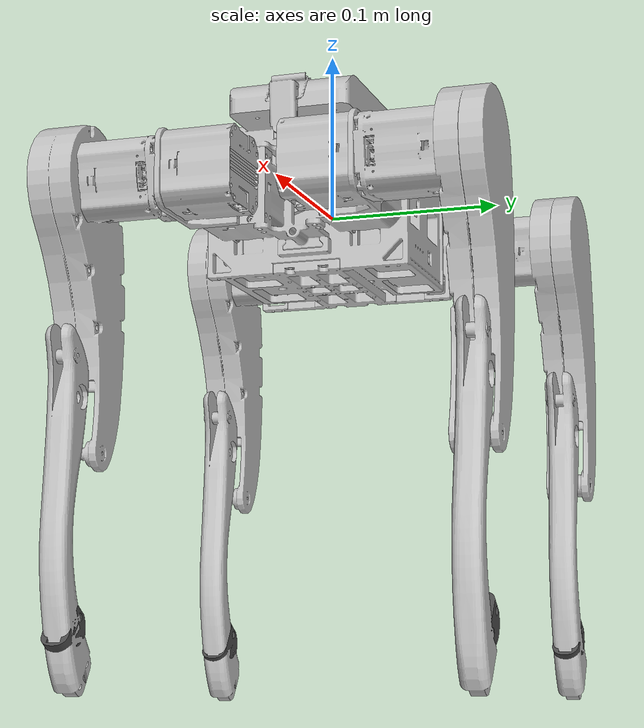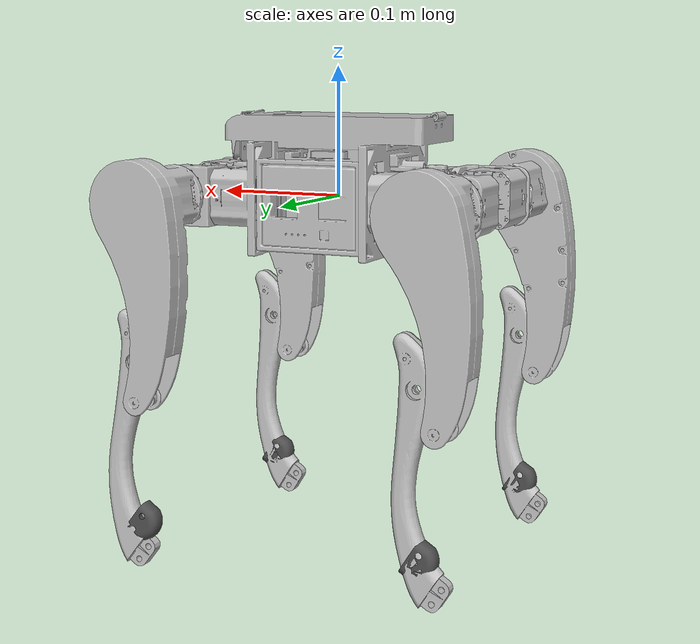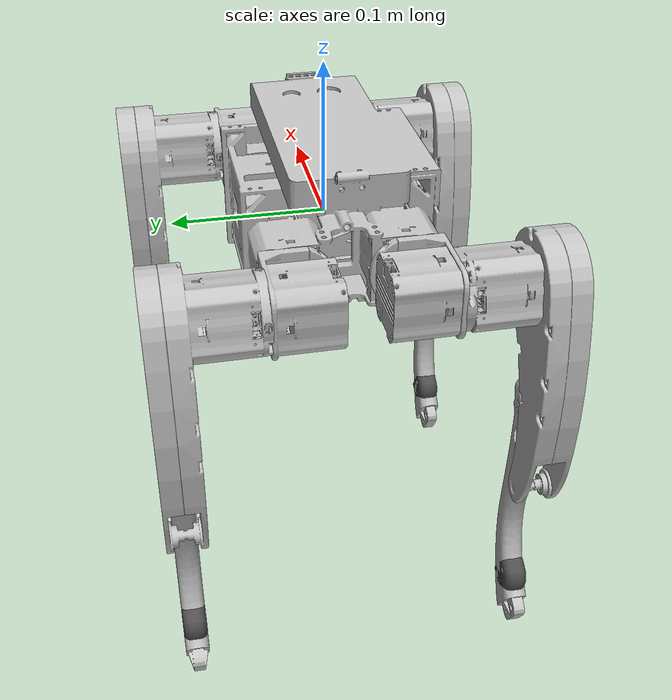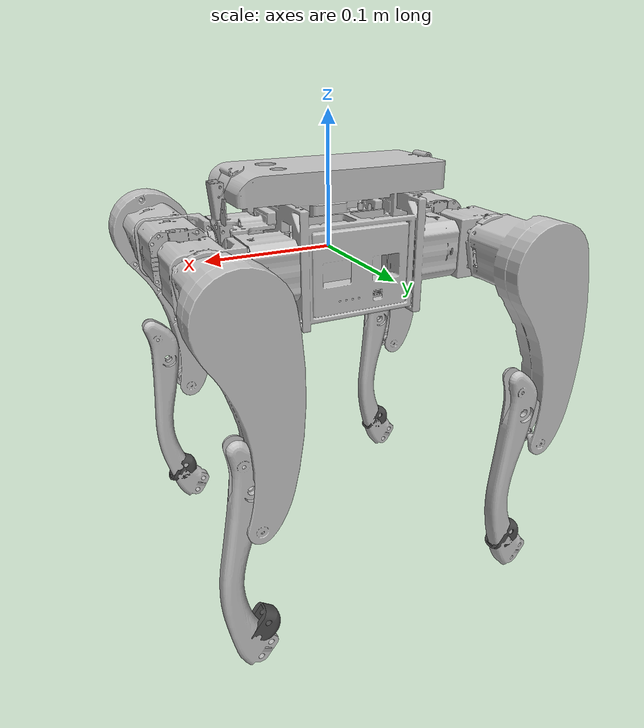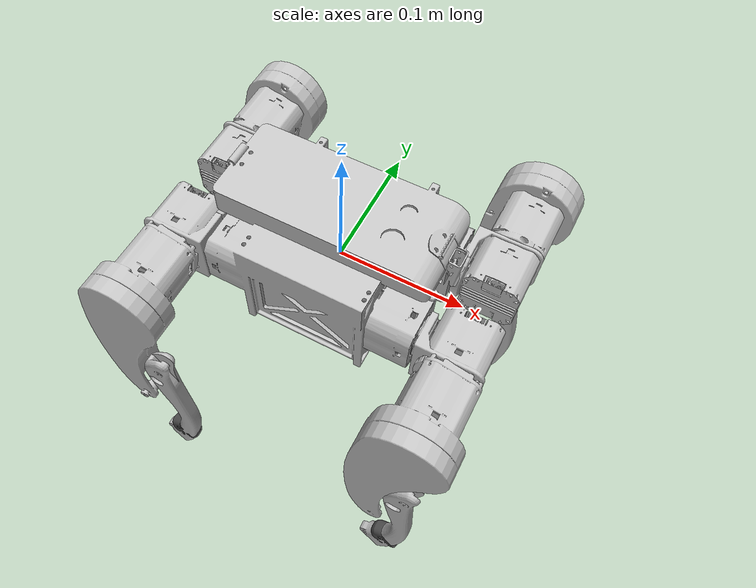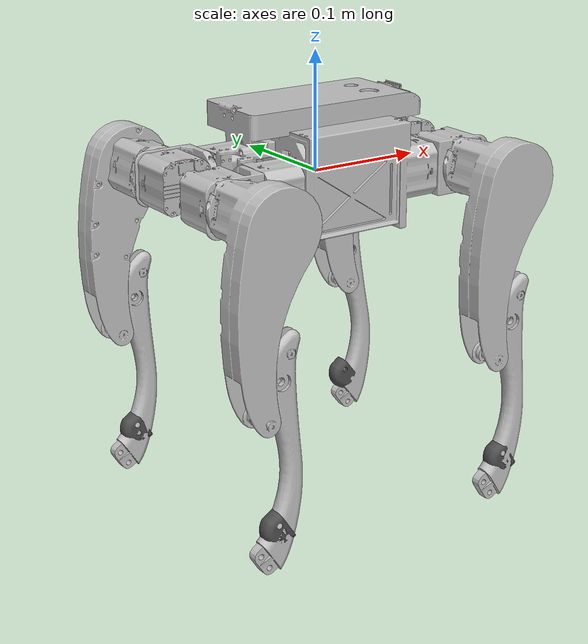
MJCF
<mujoco model="htdw_4438">
  <compiler angle="radian" meshdir="meshes/" />
  <asset>
    <mesh name="base_link" file="base_link.STL" />
    <mesh name="FL_hip" file="FL_hip.STL" />
    <mesh name="FL_thigh" file="FL_thigh.STL" />
    <mesh name="FL_calf" file="FL_calf.STL" />
    <mesh name="FL_foot" file="FL_foot.STL" />
    <mesh name="FR_hip" file="FR_hip.STL" />
    <mesh name="FR_thigh" file="FR_thigh.STL" />
    <mesh name="FR_calf" file="FR_calf.STL" />
    <mesh name="FR_foot" file="FR_foot.STL" />
    <mesh name="RL_hip" file="RL_hip.STL" />
    <mesh name="RL_thigh" file="RL_thigh.STL" />
    <mesh name="RL_calf" file="RL_calf.STL" />
    <mesh name="RL_foot" file="RL_foot.STL" />
    <mesh name="RR_hip" file="RR_hip.STL" />
    <mesh name="RR_thigh" file="RR_thigh.STL" />
    <mesh name="RR_calf" file="RR_calf.STL" />
    <mesh name="RR_foot" file="RR_foot.STL" />
    <material name="base_link_mat" rgba="0.7529 0.7529 0.7529 1" specular="0" />
    <material name="FL_hip_mat" rgba="0.7529 0.7529 0.7529 1" specular="0" />
    <material name="FL_thigh_mat" rgba="0.7529 0.7529 0.7529 1" specular="0" />
    <material name="FL_calf_mat" rgba="0.7529 0.7529 0.7529 1" specular="0" />
    <material name="FL_foot_mat" rgba="0.298 0.298 0.298 1" specular="0" />
    <material name="FR_hip_mat" rgba="0.7529 0.7529 0.7529 1" specular="0" />
    <material name="FR_thigh_mat" rgba="0.7529 0.7529 0.7529 1" specular="0" />
    <material name="FR_calf_mat" rgba="0.7529 0.7529 0.7529 1" specular="0" />
    <material name="FR_foot_mat" rgba="0.298 0.298 0.298 1" specular="0" />
    <material name="RL_hip_mat" rgba="0.7529 0.7529 0.7529 1" specular="0" />
    <material name="RL_thigh_mat" rgba="0.7529 0.7529 0.7529 1" specular="0" />
    <material name="RL_calf_mat" rgba="0.7529 0.7529 0.7529 1" specular="0" />
    <material name="RL_foot_mat" rgba="0.298 0.298 0.298 1" specular="0" />
    <material name="RR_hip_mat" rgba="0.7529 0.7529 0.7529 1" specular="0" />
    <material name="RR_thigh_mat" rgba="0.7529 0.7529 0.7529 1" specular="0" />
    <material name="RR_calf_mat" rgba="0.7529 0.7529 0.7529 1" specular="0" />
    <material name="RR_foot_mat" rgba="0.298 0.298 0.298 1" specular="0" />
  </asset>

  <worldbody>
    <body name="base_link" pos="0 0 0">
      <inertial pos="0.0006005 -0.0031498 0.0015251" mass="1.8429733" fullinertia="0.0011628461 0.0009778733 0.0013211256 0.0000021772 -0.0000020449 0.000007976"/>
      <geom pos="0 0 0" group="1" contype="0" conaffinity="0" material="base_link_mat" type="mesh" mesh="base_link" />
      <geom pos="0 0 0" rgba="0.9373 0.2667 0.2667 1" group="3" contype="1" conaffinity="1" type="mesh" mesh="base_link" />
      <body name="FL_hip" pos="0.11415 0.035 0">
        <joint name="FL_hip_joint" type="hinge" axis="1 0 0" limited="true" range="-1.05 1.05" damping="0" frictionloss="0"/>
        <inertial pos="-0.0010818 -0.0018793 -0.0001032" mass="0.2516947" fullinertia="0.0000539553 0.0000898226 0.0000558057 0.000000608 -0.0000014675 -0.0000004216"/>
        <geom pos="0 0 0" group="1" contype="0" conaffinity="0" material="FL_hip_mat" type="mesh" mesh="FL_hip" />
        <geom pos="0 0 0" rgba="0.9373 0.2667 0.2667 1" group="3" contype="1" conaffinity="1" type="mesh" mesh="FL_hip" />
        <body name="FL_thigh" pos="0 0.0792 0">
          <joint name="FL_thigh_joint" type="hinge" axis="0 1 0" limited="true" range="-1.57 3.49" damping="0" frictionloss="0"/>
          <inertial pos="-0.0009952 -0.0261102 -0.0076446" mass="0.3249236" fullinertia="0.0001368837 0.0001842674 0.0000693741 -0.0000000251 0.0000079893 -0.0000018588"/>
          <geom pos="0 0 0" group="1" contype="0" conaffinity="0" material="FL_thigh_mat" type="mesh" mesh="FL_thigh" />
          <geom pos="0 0 0" rgba="0.9373 0.2667 0.2667 1" group="3" contype="1" conaffinity="1" type="mesh" mesh="FL_thigh" />
          <body name="FL_calf" pos="0 0 -0.12">
            <joint name="FL_calf_joint" type="hinge" axis="0 1 0" limited="true" range="-2.7 -0.84" damping="0" frictionloss="0"/>
            <inertial pos="0.0056449 -0.0012143 -0.0040209" mass="0.0420237" fullinertia="0.0000555097 0.0000575373 0.0000030128 -0.0000000177 -0.0000014848 0.0000000095"/>
            <geom pos="0 0 0" group="1" contype="0" conaffinity="0" material="FL_calf_mat" type="mesh" mesh="FL_calf" />
            <geom pos="0 0 0" rgba="0.9373 0.2667 0.2667 1" group="3" contype="1" conaffinity="1" type="mesh" mesh="FL_calf" />
            <body name="FL_foot" pos="0 0 -0.12516">
              <inertial pos="-0.001777 -0.0000001 -0.0039518" mass="0.0096685" fullinertia="0.0000008254 0.0000010749 0.0000010348 0 -0.0000001349 0"/>
              <geom pos="0 0 0" group="1" contype="0" conaffinity="0" material="FL_foot_mat" type="mesh" mesh="FL_foot" />
              <geom pos="0 0 0" rgba="0.9373 0.2667 0.2667 1" group="3" contype="1" conaffinity="1" type="sphere" size="0.01675" />
            </body>
          </body>
        </body>
      </body>
      <body name="FR_hip" pos="0.11415 -0.035 0">
        <joint name="FR_hip_joint" type="hinge" axis="1 0 0" limited="true" range="-1.05 1.05" damping="0" frictionloss="0"/>
        <inertial pos="-0.0012994 0.0018793 -0.0001032" mass="0.2516947" fullinertia="0.0000539553 0.0000898226 0.0000558057 -0.0000006434 -0.0000001931 0.0000004216"/>
        <geom pos="0 0 0" group="1" contype="0" conaffinity="0" material="FR_hip_mat" type="mesh" mesh="FR_hip" />
        <geom pos="0 0 0" rgba="0.9373 0.2667 0.2667 1" group="3" contype="1" conaffinity="1" type="mesh" mesh="FR_hip" />
        <body name="FR_thigh" pos="0 -0.0792 0">
          <joint name="FR_thigh_joint" type="hinge" axis="0 1 0" limited="true" range="-1.57 3.49" damping="0" frictionloss="0"/>
          <inertial pos="-0.0010791 0.0261111 -0.0077946" mass="0.3248947" fullinertia="0.0001379618 0.0001842521 0.0000682803 0.0000000077 0.0000073151 0.0000018277"/>
          <geom pos="0 0 0" group="1" contype="0" conaffinity="0" material="FR_thigh_mat" type="mesh" mesh="FR_thigh" />
          <geom pos="0 0 0" rgba="0.9373 0.2667 0.2667 1" group="3" contype="1" conaffinity="1" type="mesh" mesh="FR_thigh" />
          <body name="FR_calf" pos="0 0 -0.12">
            <joint name="FR_calf_joint" type="hinge" axis="0 1 0" limited="true" range="-2.7 -0.84" damping="0" frictionloss="0"/>
            <inertial pos="0.0058277 0.001213 -0.0037807" mass="0.0420237" fullinertia="0.0000555156 0.0000575373 0.000003007 0.0000000131 -0.0000014865 -0.000000014"/>
            <geom pos="0 0 0" group="1" contype="0" conaffinity="0" material="FR_calf_mat" type="mesh" mesh="FR_calf" />
            <geom pos="0 0 0" rgba="0.9373 0.2667 0.2667 1" group="3" contype="1" conaffinity="1" type="mesh" mesh="FR_calf" />
            <body name="FR_foot" pos="0 0 -0.12516">
              <inertial pos="-0.001777 -0.0000001 -0.0039518" mass="0.0096685" fullinertia="0.0000008254 0.0000010749 0.0000010348 0 -0.0000001349 0"/>
              <geom pos="0 0 0" group="1" contype="0" conaffinity="0" material="FR_foot_mat" type="mesh" mesh="FR_foot" />
              <geom pos="0 0 0" rgba="0.9373 0.2667 0.2667 1" group="3" contype="1" conaffinity="1" type="sphere" size="0.01675" />
            </body>
          </body>
        </body>
      </body>
      <body name="RL_hip" pos="-0.11415 0.035 0">
        <joint name="RL_hip_joint" type="hinge" axis="1 0 0" limited="true" range="-1.05 1.05" damping="0" frictionloss="0"/>
        <inertial pos="0.0012994 -0.0018793 -0.0001032" mass="0.2516947" fullinertia="0.0000539553 0.0000898226 0.0000558057 -0.0000006434 0.0000001931 -0.0000004216"/>
        <geom pos="0 0 0" group="1" contype="0" conaffinity="0" material="RL_hip_mat" type="mesh" mesh="RL_hip" />
        <geom pos="0 0 0" rgba="0.9373 0.2667 0.2667 1" group="3" contype="1" conaffinity="1" type="mesh" mesh="RL_hip" />
        <body name="RL_thigh" pos="0 0.0792 0">
          <joint name="RL_thigh_joint" type="hinge" axis="0 1 0" limited="true" range="-1.57 3.49" damping="0" frictionloss="0"/>
          <inertial pos="-0.0009952 -0.0261102 -0.0076446" mass="0.3249236" fullinertia="0.0001368837 0.0001842674 0.0000693741 -0.0000000251 0.0000079893 -0.0000018588"/>
          <geom pos="0 0 0" group="1" contype="0" conaffinity="0" material="RL_thigh_mat" type="mesh" mesh="RL_thigh" />
          <geom pos="0 0 0" rgba="0.9373 0.2667 0.2667 1" group="3" contype="1" conaffinity="1" type="mesh" mesh="RL_thigh" />
          <body name="RL_calf" pos="0 0 -0.12">
            <joint name="RL_calf_joint" type="hinge" axis="0 1 0" limited="true" range="-2.7 -0.84" damping="0" frictionloss="0"/>
            <inertial pos="0.0056449 -0.0012143 -0.0040209" mass="0.0420237" fullinertia="0.0000555097 0.0000575373 0.0000030128 -0.0000000177 -0.0000014848 0.0000000095"/>
            <geom pos="0 0 0" group="1" contype="0" conaffinity="0" material="RL_calf_mat" type="mesh" mesh="RL_calf" />
            <geom pos="0 0 0" rgba="0.9373 0.2667 0.2667 1" group="3" contype="1" conaffinity="1" type="mesh" mesh="RL_calf" />
            <body name="RL_foot" pos="0 0 -0.12516">
              <inertial pos="-0.001777 -0.0000001 -0.0039518" mass="0.0096685" fullinertia="0.0000008254 0.0000010749 0.0000010348 0 -0.0000001349 0"/>
              <geom pos="0 0 0" group="1" contype="0" conaffinity="0" material="RL_foot_mat" type="mesh" mesh="RL_foot" />
              <geom pos="0 0 0" rgba="0.9373 0.2667 0.2667 1" group="3" contype="1" conaffinity="1" type="sphere" size="0.01675" />
            </body>
          </body>
        </body>
      </body>
      <body name="RR_hip" pos="-0.11415 -0.035 0">
        <joint name="RR_hip_joint" type="hinge" axis="1 0 0" limited="true" range="-1.05 1.05" damping="0" frictionloss="0"/>
        <inertial pos="0.0010818 0.0018793 -0.0001032" mass="0.2516947" fullinertia="0.0000539553 0.0000898226 0.0000558057 0.000000608 0.0000014675 0.0000004216"/>
        <geom pos="0 0 0" group="1" contype="0" conaffinity="0" material="RR_hip_mat" type="mesh" mesh="RR_hip" />
        <geom pos="0 0 0" rgba="0.9373 0.2667 0.2667 1" group="3" contype="1" conaffinity="1" type="mesh" mesh="RR_hip" />
        <body name="RR_thigh" pos="0 -0.0792 0">
          <joint name="RR_thigh_joint" type="hinge" axis="0 1 0" limited="true" range="-1.57 3.49" damping="0" frictionloss="0"/>
          <inertial pos="-0.0010791 0.0261111 -0.0077946" mass="0.3248947" fullinertia="0.0001379618 0.0001842521 0.0000682803 0.0000000077 0.0000073151 0.0000018277"/>
          <geom pos="0 0 0" group="1" contype="0" conaffinity="0" material="RR_thigh_mat" type="mesh" mesh="RR_thigh" />
          <geom pos="0 0 0" rgba="0.9373 0.2667 0.2667 1" group="3" contype="1" conaffinity="1" type="mesh" mesh="RR_thigh" />
          <body name="RR_calf" pos="0 0 -0.12">
            <joint name="RR_calf_joint" type="hinge" axis="0 1 0" limited="true" range="-2.7 -0.84" damping="0" frictionloss="0"/>
            <inertial pos="0.0063214 0.001213 -0.003577" mass="0.0420237" fullinertia="0.0000555217 0.0000575373 0.0000030009 0.000000001 -0.0000014796 -0.000000019"/>
            <geom pos="0 0 0" group="1" contype="0" conaffinity="0" material="RR_calf_mat" type="mesh" mesh="RR_calf" />
            <geom pos="0 0 0" rgba="0.9373 0.2667 0.2667 1" group="3" contype="1" conaffinity="1" type="mesh" mesh="RR_calf" />
            <body name="RR_foot" pos="0 0 -0.12516">
              <inertial pos="-0.001777 -0.0000001 -0.0039518" mass="0.0096685" fullinertia="0.0000008254 0.0000010749 0.0000010348 0 -0.0000001349 0"/>
              <geom pos="0 0 0" group="1" contype="0" conaffinity="0" material="RR_foot_mat" type="mesh" mesh="RR_foot" />
              <geom pos="0 0 0" rgba="0.9373 0.2667 0.2667 1" group="3" contype="1" conaffinity="1" type="sphere" size="0.01675" />
            </body>
          </body>
        </body>
      </body>
    </body>
  </worldbody>
  <actuator>
    <position name="FL_hip_joint_servo" joint="FL_hip_joint" kp="5" forcelimited="true" forcerange="-10 10" />
    <position name="FL_thigh_joint_servo" joint="FL_thigh_joint" kp="5" forcelimited="true" forcerange="-10 10" />
    <position name="FL_calf_joint_servo" joint="FL_calf_joint" kp="5" forcelimited="true" forcerange="-10 10" />
    <position name="FR_hip_joint_servo" joint="FR_hip_joint" kp="5" forcelimited="true" forcerange="-10 10" />
    <position name="FR_thigh_joint_servo" joint="FR_thigh_joint" kp="5" forcelimited="true" forcerange="-10 10" />
    <position name="FR_calf_joint_servo" joint="FR_calf_joint" kp="5" forcelimited="true" forcerange="-10 10" />
    <position name="RL_hip_joint_servo" joint="RL_hip_joint" kp="5" forcelimited="true" forcerange="-10 10" />
    <position name="RL_thigh_joint_servo" joint="RL_thigh_joint" kp="5" forcelimited="true" forcerange="-10 10" />
    <position name="RL_calf_joint_servo" joint="RL_calf_joint" kp="5" forcelimited="true" forcerange="-10 10" />
    <position name="RR_hip_joint_servo" joint="RR_hip_joint" kp="5" forcelimited="true" forcerange="-10 10" />
    <position name="RR_thigh_joint_servo" joint="RR_thigh_joint" kp="5" forcelimited="true" forcerange="-10 10" />
    <position name="RR_calf_joint_servo" joint="RR_calf_joint" kp="5" forcelimited="true" forcerange="-10 10" />
  </actuator>
</mujoco>
